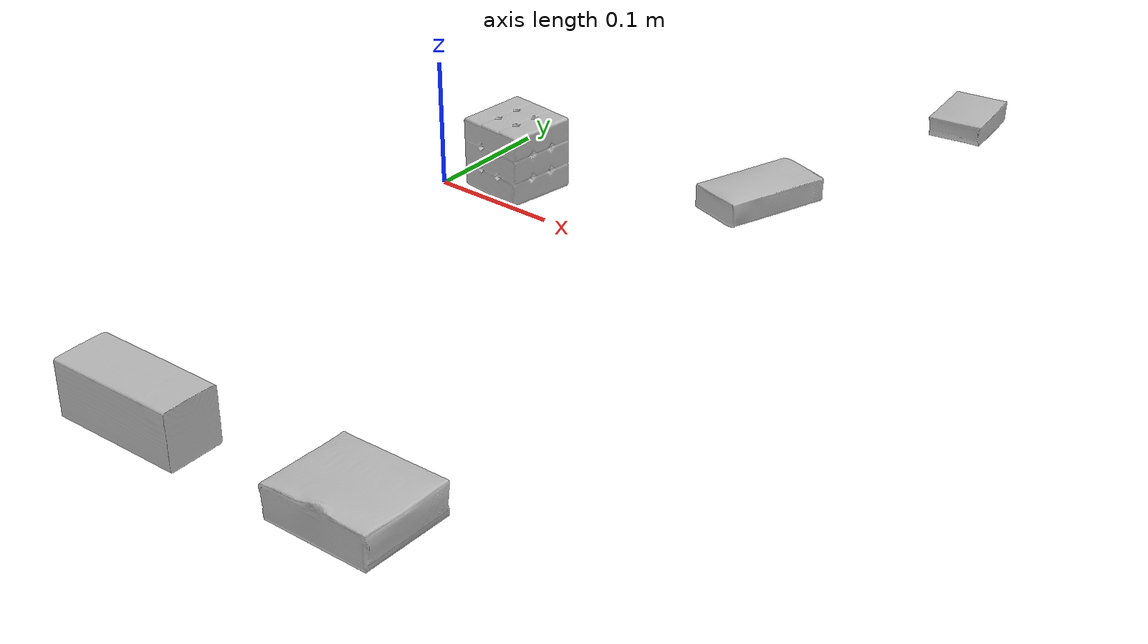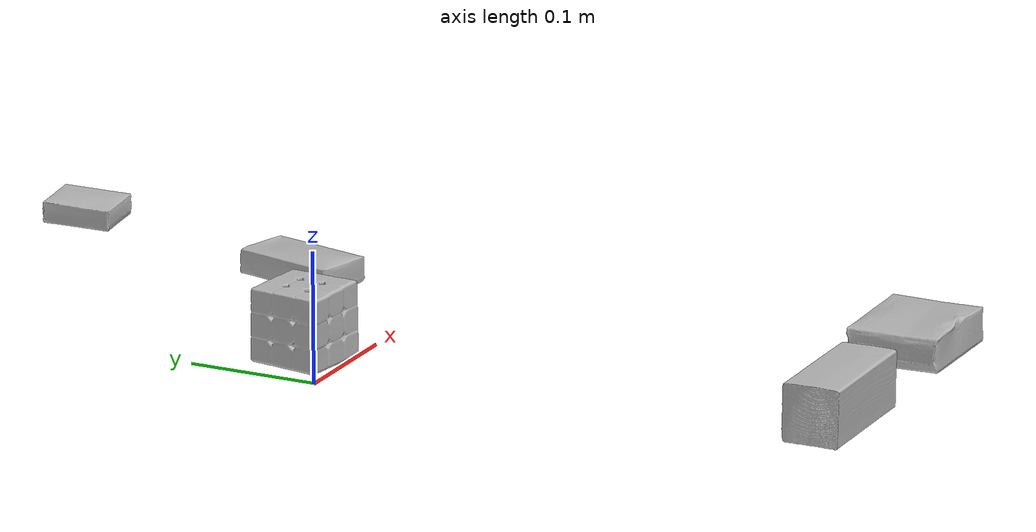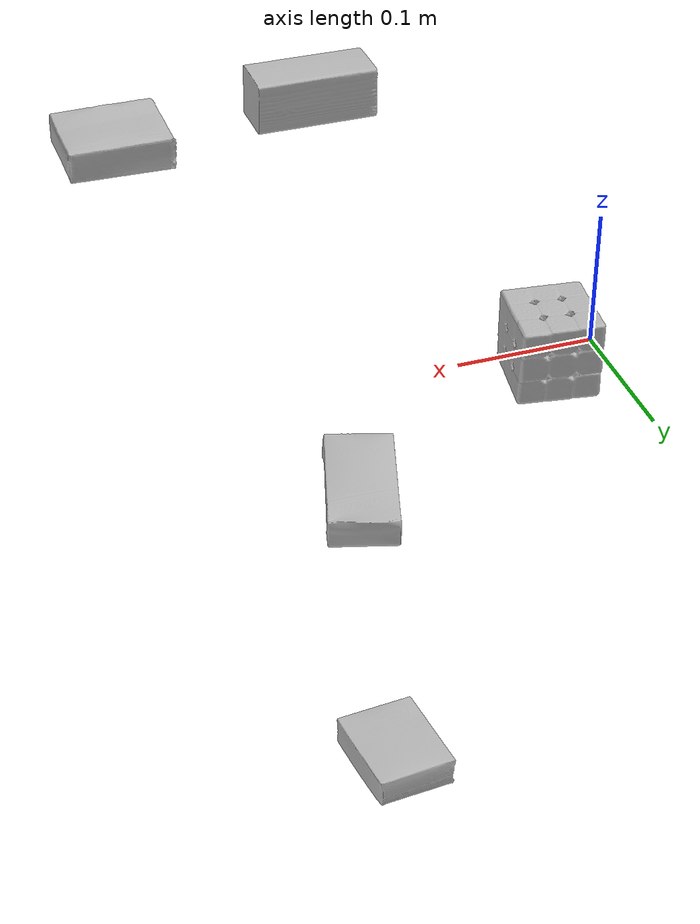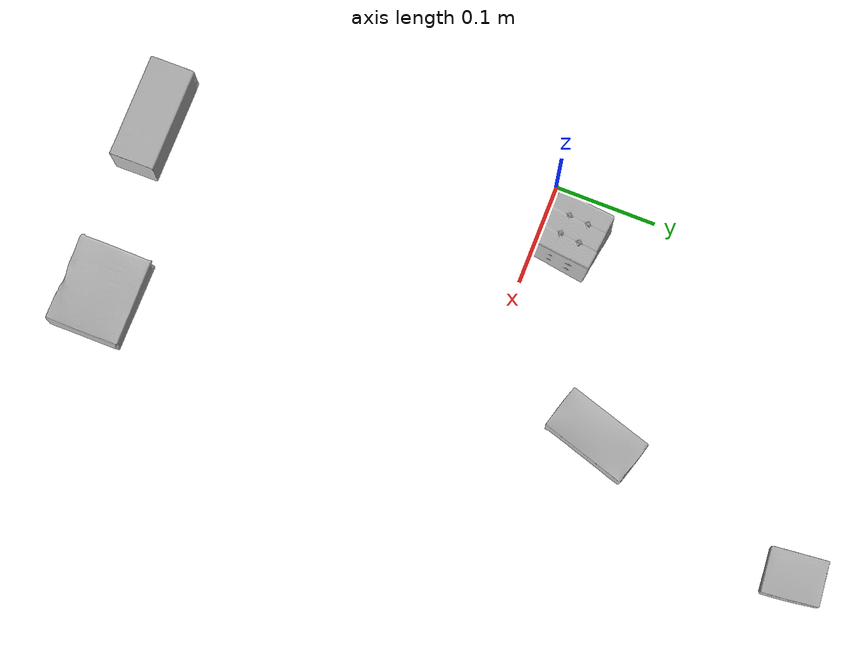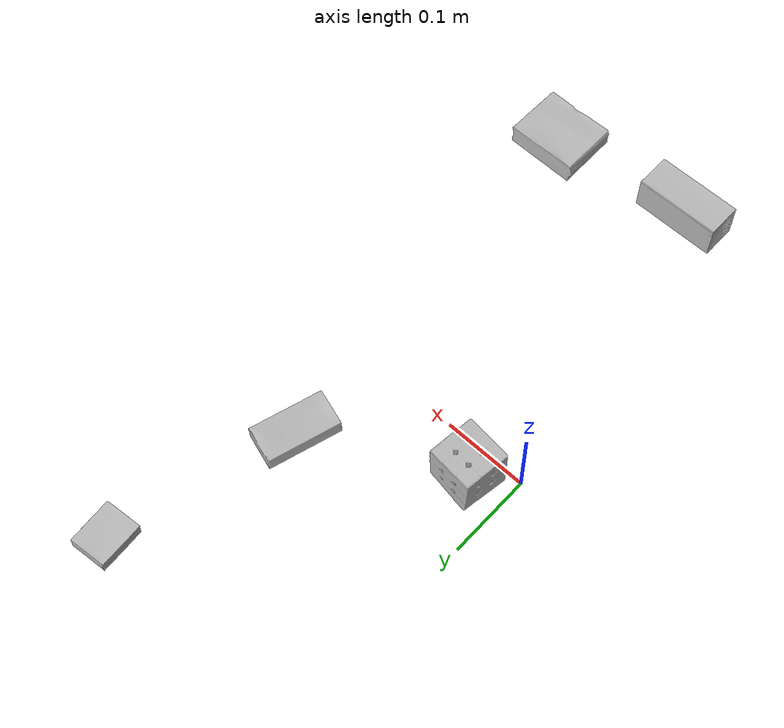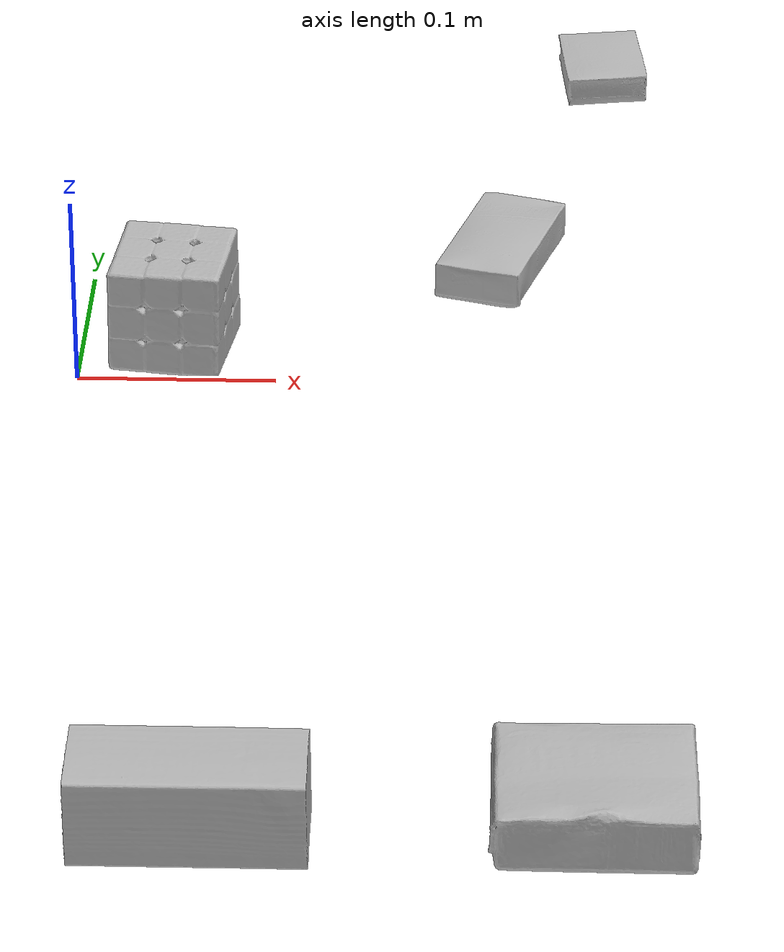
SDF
<sdf version="1.4">
  <world name="default">
    <light name="light1" type="point">
      <pose>0 0 1 0 0 0</pose>
      <diffuse>3 3 3 1</diffuse>
      <specular>3 3 3 1</specular>
    </light>
    <light name="light2" type="point">
      <pose>0 0.5 2 0 0 0</pose>
      <diffuse>1 1 1 1</diffuse>
      <specular>1 1 1 1</specular>
    </light>
    <light name="light3" type="point">
      <pose>0 0.5 2 0 0 0</pose>
      <diffuse>3 3 3 1</diffuse>
      <specular>3 3 3 1</specular>
    </light>
    <scene>
      <ambient>0.7 0.7 0.7</ambient>
    </scene>
    <model name="box1">
      <link name="link_box1">
        <collision name="default">
          <geometry>
            <mesh>
              <uri>model://gelatin_box/collision_meshes/collision.obj</uri>
              <scale>1.0 1.0 1.0</scale>
            </mesh>
          </geometry>
          <surface>
            <friction>
              <ode>
                <mu>0.5</mu>
                <mu2>0.5</mu2>
              </ode>
            </friction>
          <contact>
        <ode>
            <max_vel>0</max_vel>
            <min_depth>0.0001</min_depth>
            <kp>1e8</kp>
        </ode>
    </contact></surface>
        </collision>
        <visual name="default">
          <geometry>
            <mesh>
              <uri>model://gelatin_box/visual_meshes/visual.dae</uri>
              <scale>1.0 1.0 1.0</scale>
            </mesh>
          </geometry>
        </visual>
        <inertial>
          <mass>0.15228882431983948</mass>
          <pose>0.0004319618456065655 0.00011156871914863586 -0.0003640321083366871 -0.00105037218966889 -0.004755816826754503 0.0164405576082189</pose>
          <inertia>
            <ixx>0.00010750349</ixx>
            <iyy>7.678918e-05</iyy>
            <izz>0.00016364428</izz>
            <ixy>0</ixy>
            <ixz>0</ixz>
            <iyz>0</iyz>
          </inertia>
        </inertial>
      </link>
      <pose>0.2543182075023651 -0.36170998215675354 0.01516831386834383 0.0055974114190618035 -0.007304554546760314 -1.578815766613294</pose>
    </model>
    <model name="box2">
      <link name="link_box2">
        <collision name="default">
          <geometry>
            <mesh>
              <uri>model://rubiks_cube/collision_meshes/collision.obj</uri>
              <scale>1.0 1.0 1.0</scale>
            </mesh>
          </geometry>
          <surface>
            <friction>
              <ode>
                <mu>0.5</mu>
                <mu2>0.5</mu2>
              </ode>
            </friction>
          <contact>
        <ode>
            <max_vel>0</max_vel>
            <min_depth>0.0001</min_depth>
            <kp>1e8</kp>
        </ode>
    </contact></surface>
        </collision>
        <visual name="default">
          <geometry>
            <mesh>
              <uri>model://rubiks_cube/visual_meshes/visual.dae</uri>
              <scale>1.0 1.0 1.0</scale>
            </mesh>
          </geometry>
        </visual>
        <inertial>
          <mass>0.18699690699577332</mass>
          <pose>2.6721041649580002e-05 5.2569666877388954e-05 -7.264316082000732e-06 -0.054672785544912415 -0.09814058570479768 -0.03445363054661819</pose>
          <inertia>
            <ixx>0.00010332834</ixx>
            <iyy>0.00010284647</iyy>
            <izz>0.000104184575</izz>
            <ixy>0</ixy>
            <ixz>0</ixz>
            <iyz>0</iyz>
          </inertia>
        </inertial>
      </link>
      <pose>0.04683540016412735 0.03190328925848007 0.028678972274065018 -2.8416304091321567e-06 -7.558676218795249e-07 3.0247049598822464</pose>
    </model>
    <model name="box3">
      <link name="link_box3">
        <collision name="default">
          <geometry>
            <mesh>
              <uri>model://pudding_box/collision_meshes/collision.obj</uri>
              <scale>0.5 0.5 0.5</scale>
            </mesh>
          </geometry>
          <surface>
            <friction>
              <ode>
                <mu>0.5</mu>
                <mu2>0.5</mu2>
              </ode>
            </friction>
          <contact>
        <ode>
            <max_vel>0</max_vel>
            <min_depth>0.0001</min_depth>
            <kp>1e8</kp>
        </ode>
    </contact></surface>
        </collision>
        <visual name="default">
          <geometry>
            <mesh>
              <uri>model://pudding_box/visual_meshes/visual.dae</uri>
              <scale>0.5 0.5 0.5</scale>
            </mesh>
          </geometry>
        </visual>
        <inertial>
          <mass>0.04129739850759506</mass>
          <pose>0.00024474109522998333 0.00040339428232982755 -0.0002594413817860186 0.005213100432551209 -0.006603796827212886 0.020079819580048088</pose>
          <inertia>
            <ixx>1.1671145e-05</ixx>
            <iyy>7.852431e-06</iyy>
            <izz>1.7235501e-05</izz>
            <ixy>0</ixy>
            <ixz>0</ixz>
            <iyz>0</iyz>
          </inertia>
        </inertial>
      </link>
      <pose>0.26901787519454956 0.3338359594345093 0.009862902574241161 0.022348447175250113 -0.011391797959233053 0.09809828185792516</pose>
    </model>
    <model name="box4">
      <link name="link_box4">
        <collision name="default">
          <geometry>
            <mesh>
              <uri>model://sugar_box/collision_meshes/collision.obj</uri>
              <scale>0.5 0.5 0.5</scale>
            </mesh>
          </geometry>
          <surface>
            <friction>
              <ode>
                <mu>0.5</mu>
                <mu2>0.5</mu2>
              </ode>
            </friction>
          <contact>
        <ode>
            <max_vel>0</max_vel>
            <min_depth>0.0001</min_depth>
            <kp>1e8</kp>
        </ode>
    </contact></surface>
        </collision>
        <visual name="default">
          <geometry>
            <mesh>
              <uri>model://sugar_box/visual_meshes/visual.dae</uri>
              <scale>0.5 0.5 0.5</scale>
            </mesh>
          </geometry>
        </visual>
        <inertial>
          <mass>0.09136254340410233</mass>
          <pose>0.0005171863595023751 1.924554817378521e-05 -0.00018182402709499002 -0.00040462606744182556 0.0010506635219056535 0.0026153790218759383</pose>
          <inertia>
            <ixx>1.9030753e-05</ixx>
            <iyy>6.15113e-05</iyy>
            <izz>7.363638e-05</izz>
            <ixy>0</ixy>
            <ixz>0</ixz>
            <iyz>0</iyz>
          </inertia>
        </inertial>
      </link>
      <pose>0.21260561048984528 0.11930530518293381 0.011399302631616592 0.0007754443777981648 -0.023432620641428897 -1.8690474368847858</pose>
    </model>
    <model name="box5">
      <link name="link_box5">
        <collision name="default">
          <geometry>
            <mesh>
              <uri>model://wood_block/collision_meshes/collision.obj</uri>
              <scale>0.5 0.5 0.5</scale>
            </mesh>
          </geometry>
          <surface>
            <friction>
              <ode>
                <mu>0.5</mu>
                <mu2>0.5</mu2>
              </ode>
            </friction>
          <contact>
        <ode>
            <max_vel>0</max_vel>
            <min_depth>0.0001</min_depth>
            <kp>1e8</kp>
        </ode>
    </contact></surface>
        </collision>
        <visual name="default">
          <geometry>
            <mesh>
              <uri>model://wood_block/visual_meshes/visual.dae</uri>
              <scale>0.5 0.5 0.5</scale>
            </mesh>
          </geometry>
        </visual>
        <inertial>
          <mass>0.2591090798377991</mass>
          <pose>-2.9066577553749084e-06 -0.00028540470520965755 0.00013204290007706732 -0.05220937491622274 -0.005192696068464721 -0.006861378365732138</pose>
          <inertia>
            <ixx>8.6681786e-05</ixx>
            <iyy>0.00027382775</iyy>
            <izz>0.0002728035</izz>
            <ixy>0</ixy>
            <ixz>0</ixz>
            <iyz>0</iyz>
          </inertia>
        </inertial>
      </link>
      <pose>0.08197424560785294 -0.37795305252075195 0.02262926660478115 -0.005208461754333434 0.005718626052937801 -3.1365676411065886</pose>
    </model>
  <physics type="ode">
      <max_contacts>50</max_contacts>
      <ode>
        <solver>
          <type>quick</type>
          <iters>75</iters>
        </solver>
        <constraints>
          <contact_max_correcting_vel>0</contact_max_correcting_vel>
          <contact_surface_layer>0</contact_surface_layer>
        </constraints>
      </ode>
    </physics></world>
</sdf>
